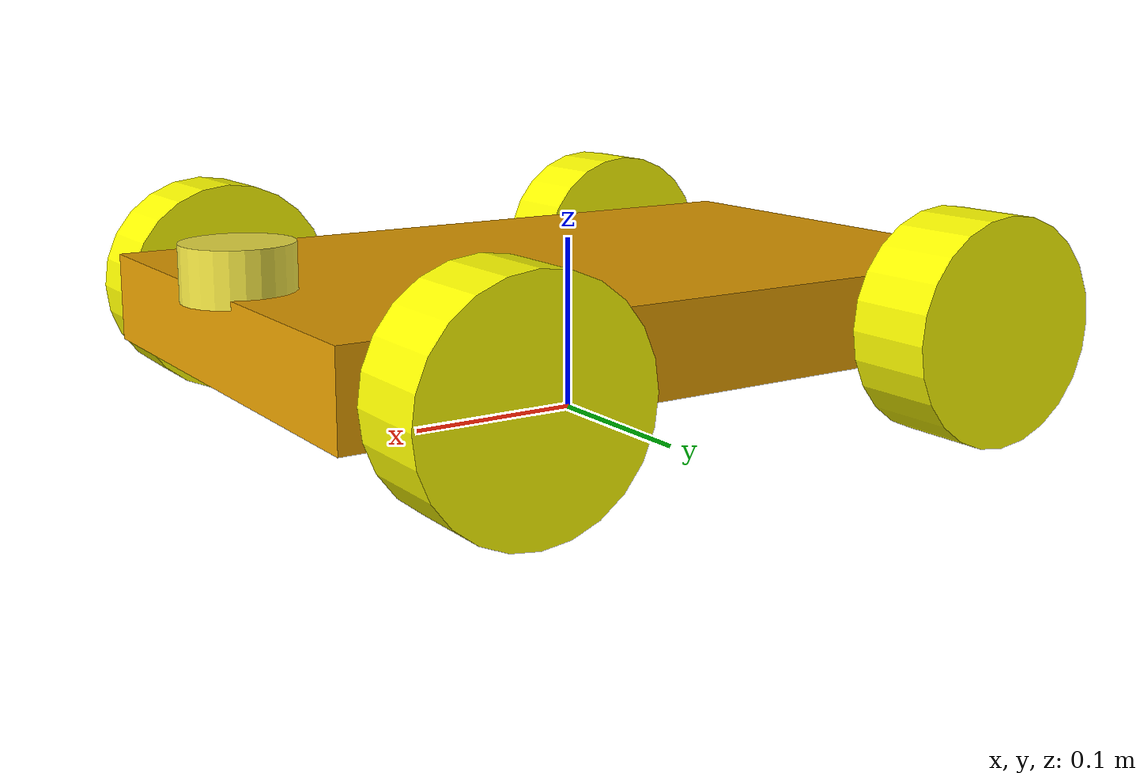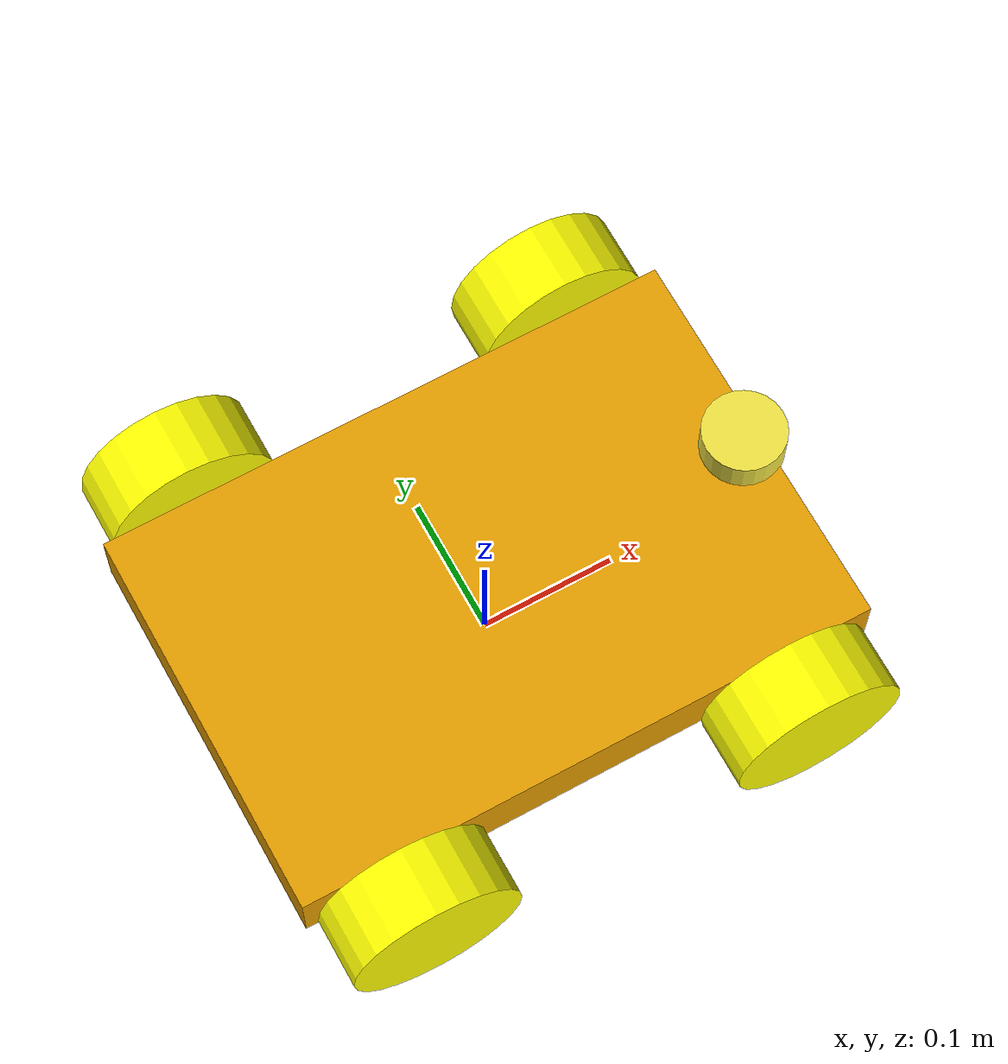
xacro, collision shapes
<?xml version="1.0"?>
<robot xmlns:xacro="http://www.ros.org/wiki/xacro" name="robot">

  <!-- Include constants and parts -->
  <xacro:include filename="$(find robot_description)/urdf/diff_terrain/constants.xacro"/>
  <xacro:include filename="$(find robot_description)/urdf/diff_terrain/chassis.xacro"/>
  <xacro:include filename="$(find robot_description)/urdf/constants.xacro"/>
  <xacro:include filename="$(find robot_description)/urdf/diff_terrain/wheel.xacro"/>
  <xacro:include filename="$(find robot_description)/urdf/tmini_laser.xacro"/>

  <xacro:include filename="$(find robot_description)/urdf/base_link.xacro"/>

  <!-- Set Laser -->
  <xacro:laser_part parent_link="base_link" joint_name="front_laser_joint" xyz="0.2 0 0.10" rpy="0 0 0"/>

  <!-- Create wheels -->
  <xacro:wheel_macro name="rear_left_wheel"   parent="base_link" xyz="-${wheel_separation_x/2}  ${wheel_separation_y/2} ${wheel_radius}" rpy="1.5708 0 0"/>
  <xacro:wheel_macro name="rear_right_wheel"  parent="base_link" xyz="-${wheel_separation_x/2} -${wheel_separation_y/2} ${wheel_radius}" rpy="1.5708 0 0"/>
  <xacro:wheel_macro name="front_left_wheel"  parent="base_link" xyz=" ${wheel_separation_x/2}  ${wheel_separation_y/2} ${wheel_radius}" rpy="1.5708 0 0"/>
  <xacro:wheel_macro name="front_right_wheel" parent="base_link" xyz=" ${wheel_separation_x/2} -${wheel_separation_y/2} ${wheel_radius}" rpy="1.5708 0 0"/>

</robot>

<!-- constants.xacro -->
<robot xmlns:xacro="http://www.ros.org/wiki/xacro" name="constants">

  <xacro:property name="chassis_length" value="0.43"/>
  <xacro:property name="chassis_width" value="0.29"/>
  <xacro:property name="chassis_height" value="0.185"/>

  <xacro:property name="chassis_lvl_1" value="0.09"/>

  <xacro:property name="wheel_radius" value="0.0625"/>
  <xacro:property name="wheel_thickness" value="0.05"/>
  <xacro:property name="wheel_separation_x" value="0.29"/>
  <xacro:property name="wheel_separation_y" value="0.35"/>

</robot>

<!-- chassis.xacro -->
<robot xmlns:xacro="http://www.ros.org/wiki/xacro" name="chassis_part">

  <xacro:include filename="$(find robot_description)/urdf/diff_terrain/constants.xacro"/>

  <xacro:property name="frame_mesh" value="file://$(find robot_description)/meshes/robot_frame.dae"/>
  <xacro:property name="file_scale"         value="1.0 1.0 1.0" />  <!-- The STL file is in millimeters -->

  <link name="chassis">
    <visual>
      <geometry>
        <mesh
          filename="${frame_mesh}"
          scale="${file_scale}"/>
        </geometry>
    </visual>
    <collision>
      <origin xyz="0 0 -0.025" rpy="0 0 0"/>

      <geometry>
        <box size="${chassis_length} ${chassis_width} 0.05"/>
      </geometry>
    </collision>
    <inertial>
      <mass value="15.0"/>
      <inertia ixx="0.1" ixy="0.0" ixz="0.0"
               iyy="0.1" iyz="0.0"
               izz="0.1"/>
    </inertial>
  </link>

  <joint name="chassis_joint" type="fixed">
    <parent link="base_link"/>
    <child link="chassis"/>
    <origin xyz="0 0 ${chassis_lvl_1}" rpy="0 0 0"/>
  </joint>

</robot>

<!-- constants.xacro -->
<robot xmlns:xacro="http://www.ros.org/wiki/xacro" name="constants">

  <xacro:property name="laser_radius" value="0.03"/>
  <xacro:property name="laser_length" value="0.03"/>

</robot>

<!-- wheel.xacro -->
<robot xmlns:xacro="http://www.ros.org/wiki/xacro" name="wheel_part">

  <xacro:include filename="$(find robot_description)/urdf/diff_terrain/constants.xacro"/>

  <xacro:property name="wheel_mesh" value="file://$(find robot_description)/meshes/terrain_wheel.dae"/>

  <xacro:property name="model_offset_x"     value="-0.20" />              <!-- Fix the mesh model offset -->
  <xacro:property name="model_offset_y"     value="0.15" />               <!-- Fix the mesh model offset -->
  <xacro:property name="file_scale"         value="1.0 1.0 1.0" />        <!-- The STL file is in millimeters -->

  <xacro:macro name="wheel_macro" params="name parent xyz rpy">
    <link name="${name}">
      <visual>
        <geometry>
          <mesh
            filename="${wheel_mesh}"
            scale="${file_scale}"/>
        </geometry>
        <material name="yellow">
          <color rgba="1 1 0 1"/>
        </material>
      </visual>
      <collision>
        <geometry>
          <cylinder radius="${wheel_radius}" length="${wheel_thickness}"/>
        </geometry>
      </collision>
      <inertial>
        <mass value="0.2"/>
        <inertia ixx="0.001" ixy="0" ixz="0"
                 iyy="0.001" iyz="0"
                 izz="0.001"/>
      </inertial>
    </link>

    <joint name="${name}_joint" type="continuous">
      <parent link="${parent}"/>
      <child link="${name}"/>
      <origin xyz="${xyz}" rpy="${rpy}"/>
      <axis xyz="0 0 -1"/>
    </joint>
  </xacro:macro>

</robot>

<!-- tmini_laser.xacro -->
<robot xmlns:xacro="http://www.ros.org/wiki/xacro" name="laser_part">

  <xacro:include filename="constants.xacro"/>

  <xacro:property name="lidar_mesh" value="file://$(find robot_description)/meshes/tmini_lidar.dae"/>
  <xacro:property name="file_scale"         value="1.0 1.0 1.0" />        <!-- The STL file is in millimeters -->

  <!-- Reusable laser macro -->
  <xacro:macro name="laser_part" params="parent_link joint_name xyz rpy">

    <link name="laser_frame">
      <visual>
        <origin xyz="0 0 -0.01" rpy="0 0 0"/>

        <geometry>
          <mesh
            filename="${lidar_mesh}"
            scale="${file_scale}"/>
        </geometry>
      </visual>

      <collision>
        <geometry>
          <cylinder radius="${laser_radius}" length="${laser_length}"/>
        </geometry>
      </collision>
    </link>

    <joint name="${joint_name}" type="fixed">
      <parent link="${parent_link}"/>
      <child link="laser_frame"/>
      <origin xyz="${xyz}" rpy="${rpy}"/>
    </joint>

  </xacro:macro>

</robot>

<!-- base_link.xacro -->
<robot xmlns:xacro="http://www.ros.org/wiki/xacro" name="base_link_part">

  <!-- Base link -->
  <link name="base_footprint"/>

  <joint name="base_footprint_joint" type="fixed">
    <parent link="base_footprint"/>
    <child link="base_link"/>
    <origin xyz="0 0 0" rpy="0 0 0"/>
  </joint>

  <link name="base_link"/>

</robot>
